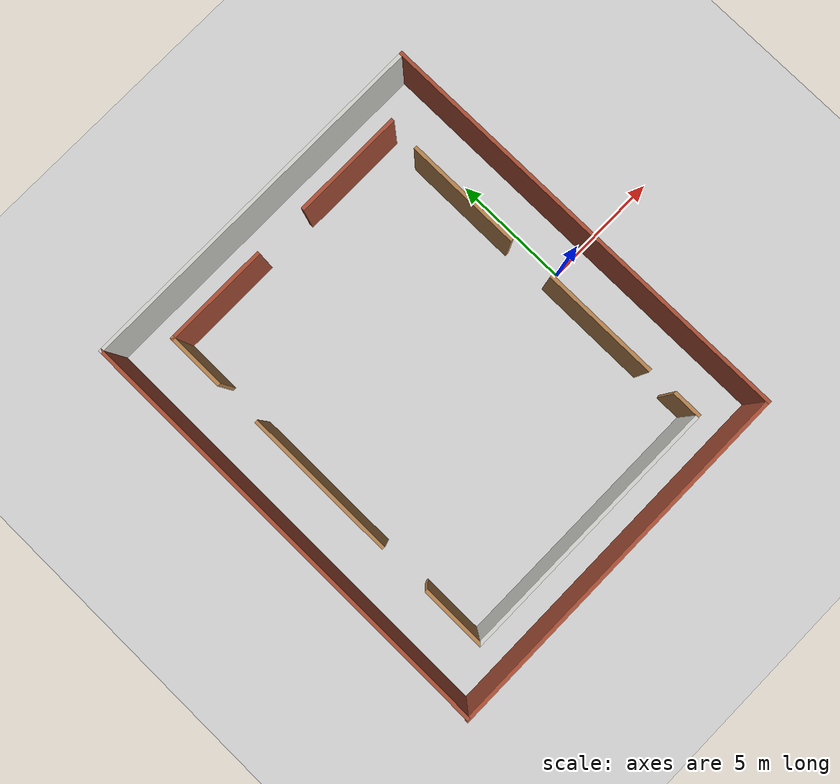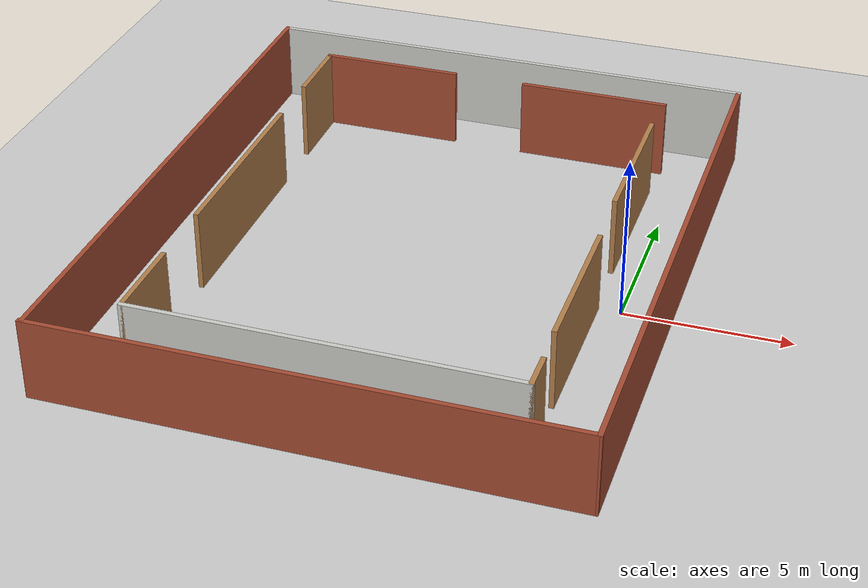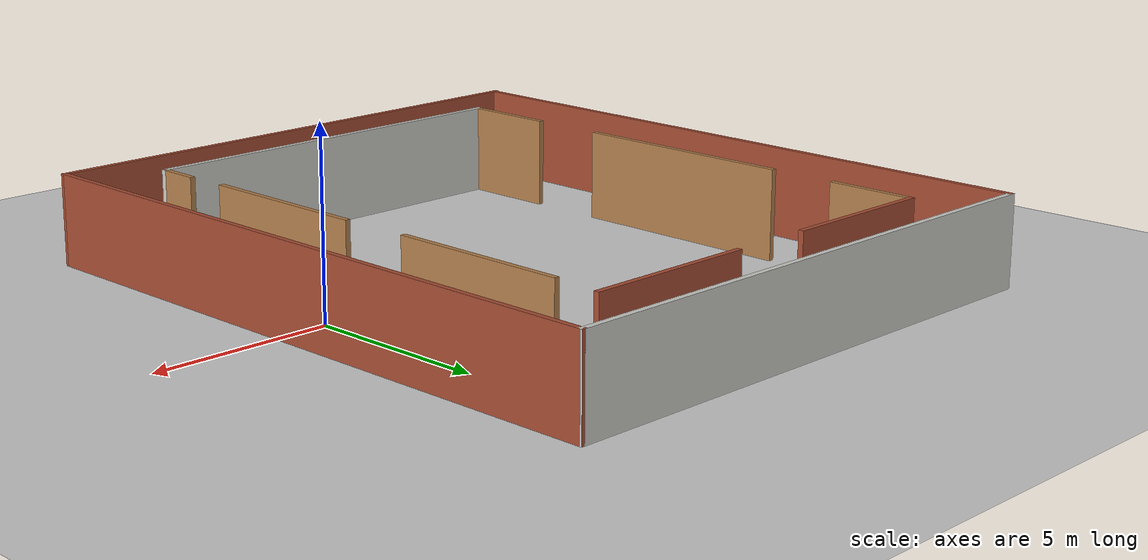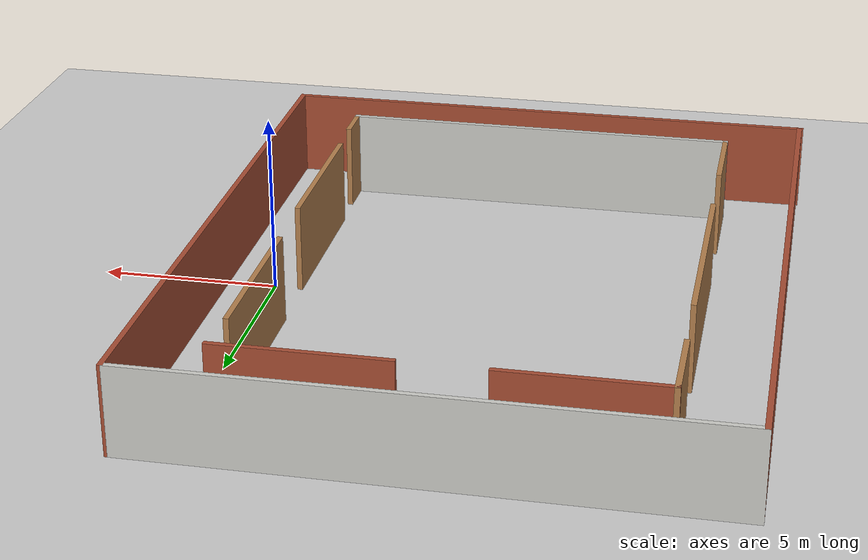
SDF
<sdf version="1.4">
 <world name="default">
  <model name="ground_plane">
   <static>1</static>
   <link name="link">
    <collision name="collision">
     <geometry><plane><normal>0 0 1</normal><size>100 100</size></plane></geometry>
     <surface><friction><ode><mu>100</mu><mu2>50</mu2></ode></friction></surface>
    </collision>
    <visual name="visual">
     <cast_shadows>0</cast_shadows>
     <geometry><plane><normal>0 0 1</normal><size>100 100</size></plane></geometry>
     <material>
      <script><uri>file://media/materials/scripts/gazebo.material</uri><name>Gazebo/Tertiary</name></script>
     </material>
    </visual>
   </link>
  </model>
  <light name="sun" type="directional">
   <pose>0 0 10 0 -0 0</pose>
   <diffuse>0.8 0.8 0.8 1</diffuse>
   <specular>0.2 0.2 0.2 1</specular>
   <attenuation>
    <range>1000</range>
    <constant>0.9</constant>
    <linear>0.01</linear>
    <quadratic>0.001</quadratic>
   </attenuation>
   <direction>-0.5 0.1 -0.9</direction>
  </light>
  <include><uri>model://open_hall3</uri><pose>-6.39 0.5 0.0 0 0 0</pose></include>
 </world>
</sdf>

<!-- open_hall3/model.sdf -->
<sdf version='1.6'>
  <model name='open_hall3'>
    <pose frame=''>-6.57156 -0.923455 0 0 -0 0</pose>
    <link name='Wall_11'>
      <collision name='Wall_11_Collision'>
        <geometry>
          <box>
            <size>4.75 0.15 2.5</size>
          </box>
        </geometry>
        <pose frame=''>0 0 1.25 0 -0 0</pose>
      </collision>
      <visual name='Wall_11_Visual'>
        <pose frame=''>0 0 1.25 0 -0 0</pose>
        <geometry>
          <box>
            <size>4.75 0.15 2.5</size>
          </box>
        </geometry>
        <material>
          <script>
            <uri>file://media/materials/scripts/gazebo.material</uri>
            <name>Gazebo/Bricks</name>
          </script>
          <ambient>1 1 1 1</ambient>
        </material>
        <meta>
          <layer>0</layer>
        </meta>
      </visual>
      <pose frame=''>3.40186 7.79691 0 0 -0 3.14159</pose>
    </link>
    <link name='Wall_13'>
      <collision name='Wall_13_Collision'>
        <geometry>
          <box>
            <size>2.75 0.15 2.5</size>
          </box>
        </geometry>
        <pose frame=''>0 0 1.25 0 -0 0</pose>
      </collision>
      <visual name='Wall_13_Visual'>
        <pose frame=''>0 0 1.25 0 -0 0</pose>
        <geometry>
          <box>
            <size>2.75 0.15 2.5</size>
          </box>
        </geometry>
        <material>
          <script>
            <uri>file://media/materials/scripts/gazebo.material</uri>
            <name>Gazebo/Wood</name>
          </script>
          <ambient>1 1 1 1</ambient>
        </material>
        <meta>
          <layer>0</layer>
        </meta>
      </visual>
      <pose frame=''>-5.64814 -6.50309 0 0 -0 1.5708</pose>
    </link>
    <link name='Wall_15'>
      <collision name='Wall_15_Collision'>
        <geometry>
          <box>
            <size>6.5 0.15 2.5</size>
          </box>
        </geometry>
        <pose frame=''>0 0 1.25 0 -0 0</pose>
      </collision>
      <visual name='Wall_15_Visual'>
        <pose frame=''>0 0 1.25 0 -0 0</pose>
        <geometry>
          <box>
            <size>6.5 0.15 2.5</size>
          </box>
        </geometry>
        <material>
          <script>
            <uri>file://media/materials/scripts/gazebo.material</uri>
            <name>Gazebo/Wood</name>
          </script>
          <ambient>1 1 1 1</ambient>
        </material>
        <meta>
          <layer>0</layer>
        </meta>
      </visual>
      <pose frame=''>-5.64814 0.23954 0 0 -0 1.5708</pose>
    </link>
    <link name='Wall_17'>
      <collision name='Wall_17_Collision'>
        <geometry>
          <box>
            <size>2.5 0.15 2.5</size>
          </box>
        </geometry>
        <pose frame=''>0 0 1.25 0 -0 0</pose>
      </collision>
      <visual name='Wall_17_Visual'>
        <pose frame=''>0 0 1.25 0 -0 0</pose>
        <geometry>
          <box>
            <size>2.5 0.15 2.5</size>
          </box>
        </geometry>
        <material>
          <script>
            <uri>file://media/materials/scripts/gazebo.material</uri>
            <name>Gazebo/Wood</name>
          </script>
          <ambient>1 1 1 1</ambient>
        </material>
        <meta>
          <layer>0</layer>
        </meta>
      </visual>
      <pose frame=''>-5.64814 6.62191 0 0 -0 -1.5708</pose>
    </link>
    <link name='Wall_19'>
      <collision name='Wall_19_Collision'>
        <geometry>
          <box>
            <size>1.25 0.15 2.5</size>
          </box>
        </geometry>
        <pose frame=''>0 0 1.25 0 -0 0</pose>
      </collision>
      <visual name='Wall_19_Visual'>
        <pose frame=''>0 0 1.25 0 -0 0</pose>
        <geometry>
          <box>
            <size>1.25 0.15 2.5</size>
          </box>
        </geometry>
        <material>
          <script>
            <uri>file://media/materials/scripts/gazebo.material</uri>
            <name>Gazebo/Wood</name>
          </script>
          <ambient>1 1 1 1</ambient>
        </material>
        <meta>
          <layer>0</layer>
        </meta>
      </visual>
      <pose frame=''>5.70186 -7.25309 0 0 -0 1.5708</pose>
    </link>
    <link name='Wall_22'>
      <collision name='Wall_22_Collision'>
        <geometry>
          <box>
            <size>5 0.15 2.5</size>
          </box>
        </geometry>
        <pose frame=''>0 0 1.25 0 -0 0</pose>
      </collision>
      <visual name='Wall_22_Visual'>
        <pose frame=''>0 0 1.25 0 -0 0</pose>
        <geometry>
          <box>
            <size>5 0.15 2.5</size>
          </box>
        </geometry>
        <material>
          <script>
            <uri>file://media/materials/scripts/gazebo.material</uri>
            <name>Gazebo/Wood</name>
          </script>
          <ambient>1 1 1 1</ambient>
        </material>
        <meta>
          <layer>0</layer>
        </meta>
      </visual>
      <pose frame=''>5.65717 -2.95885 0 0 -0 1.5708</pose>
    </link>
    <link name='Wall_24'>
      <collision name='Wall_24_Collision'>
        <geometry>
          <box>
            <size>5 0.15 2.5</size>
          </box>
        </geometry>
        <pose frame=''>0 0 1.25 0 -0 0</pose>
      </collision>
      <visual name='Wall_24_Visual'>
        <pose frame=''>0 0 1.25 0 -0 0</pose>
        <geometry>
          <box>
            <size>5 0.15 2.5</size>
          </box>
        </geometry>
        <material>
          <script>
            <uri>file://media/materials/scripts/gazebo.material</uri>
            <name>Gazebo/Wood</name>
          </script>
          <ambient>1 1 1 1</ambient>
        </material>
        <meta>
          <layer>0</layer>
        </meta>
      </visual>
      <pose frame=''>5.61065 3.97322 0 0 -0 1.5708</pose>
    </link>
    <link name='Wall_26'>
      <collision name='Wall_26_Collision'>
        <geometry>
          <box>
            <size>18.75 0.15 2.5</size>
          </box>
        </geometry>
        <pose frame=''>0 0 1.25 0 -0 0</pose>
      </collision>
      <visual name='Wall_26_Visual'>
        <pose frame=''>0 0 1.25 0 -0 0</pose>
        <geometry>
          <box>
            <size>18.75 0.15 2.5</size>
          </box>
        </geometry>
        <material>
          <script>
            <uri>file://media/materials/scripts/gazebo.material</uri>
            <name>Gazebo/Bricks</name>
          </script>
          <ambient>1 1 1 1</ambient>
        </material>
        <meta>
          <layer>0</layer>
        </meta>
      </visual>
      <pose frame=''>-7.78824 0.023327 0 0 -0 -1.5708</pose>
    </link>
    <link name='Wall_28'>
      <collision name='Wall_28_Collision'>
        <geometry>
          <box>
            <size>15.8196 0.15 2.5</size>
          </box>
        </geometry>
        <pose frame=''>0 0 1.25 0 -0 0</pose>
      </collision>
      <visual name='Wall_28_Visual'>
        <pose frame=''>0 0 1.25 0 -0 0</pose>
        <geometry>
          <box>
            <size>15.8196 0.15 2.5</size>
          </box>
        </geometry>
        <material>
          <script>
            <uri>file://media/materials/scripts/gazebo.material</uri>
            <name>Gazebo/Bricks</name>
          </script>
          <ambient>1 1 1 1</ambient>
        </material>
        <meta>
          <layer>0</layer>
        </meta>
      </visual>
      <pose frame=''>0 -9.29993 0 0 -0 0.002969</pose>
    </link>
    <link name='Wall_29'>
      <collision name='Wall_29_Collision'>
        <geometry>
          <box>
            <size>18.75 0.15 2.5</size>
          </box>
        </geometry>
        <pose frame=''>0 0 1.25 0 -0 0</pose>
      </collision>
      <visual name='Wall_29_Visual'>
        <pose frame=''>0 0 1.25 0 -0 0</pose>
        <geometry>
          <box>
            <size>18.75 0.15 2.5</size>
          </box>
        </geometry>
        <material>
          <script>
            <uri>file://media/materials/scripts/gazebo.material</uri>
            <name>Gazebo/Bricks</name>
          </script>
          <ambient>1 1 1 1</ambient>
        </material>
        <meta>
          <layer>0</layer>
        </meta>
      </visual>
      <pose frame=''>7.82326 0.023327 0 0 -0 1.57203</pose>
    </link>
    <link name='Wall_3'>
      <collision name='Wall_3_Collision'>
        <geometry>
          <box>
            <size>11.5 0.15 2.5</size>
          </box>
        </geometry>
        <pose frame=''>0 0 1.25 0 -0 0</pose>
      </collision>
      <visual name='Wall_3_Visual'>
        <pose frame=''>0 0 1.25 0 -0 0</pose>
        <geometry>
          <box>
            <size>11.5 0.15 2.5</size>
          </box>
        </geometry>
        <material>
          <script>
            <uri>file://media/materials/scripts/gazebo.material</uri>
            <name>Gazebo/CeilingTiled</name>
          </script>
          <ambient>1 1 1 1</ambient>
        </material>
        <meta>
          <layer>0</layer>
        </meta>
      </visual>
      <pose frame=''>0.026863 -7.80309 0 0 -0 0</pose>
    </link>
    <link name='Wall_30'>
      <collision name='Wall_30_Collision'>
        <geometry>
          <box>
            <size>15.75 0.15 2.5</size>
          </box>
        </geometry>
        <pose frame=''>0 0 1.25 0 -0 0</pose>
      </collision>
      <visual name='Wall_30_Visual'>
        <pose frame=''>0 0 1.25 0 -0 0</pose>
        <geometry>
          <box>
            <size>15.75 0.15 2.5</size>
          </box>
        </geometry>
        <material>
          <script>
            <uri>file://media/materials/scripts/gazebo.material</uri>
            <name>Gazebo/CeilingTiled</name>
          </script>
          <ambient>1 1 1 1</ambient>
        </material>
        <meta>
          <layer>0</layer>
        </meta>
      </visual>
      <pose frame=''>0.011763 9.32333 0 0 -0 3.14159</pose>
    </link>
    <link name='Wall_9'>
      <collision name='Wall_9_Collision'>
        <geometry>
          <box>
            <size>4.5 0.15 2.5</size>
          </box>
        </geometry>
        <pose frame=''>0 0 1.25 0 -0 0</pose>
      </collision>
      <visual name='Wall_9_Visual'>
        <pose frame=''>0 0 1.25 0 -0 0</pose>
        <geometry>
          <box>
            <size>4.5 0.15 2.5</size>
          </box>
        </geometry>
        <material>
          <script>
            <uri>file://media/materials/scripts/gazebo.material</uri>
            <name>Gazebo/Bricks</name>
          </script>
          <ambient>1 1 1 1</ambient>
        </material>
        <meta>
          <layer>0</layer>
        </meta>
      </visual>
      <pose frame=''>-3.47314 7.79691 0 0 -0 0</pose>
    </link>
    <static>1</static>
  </model>
</sdf>
